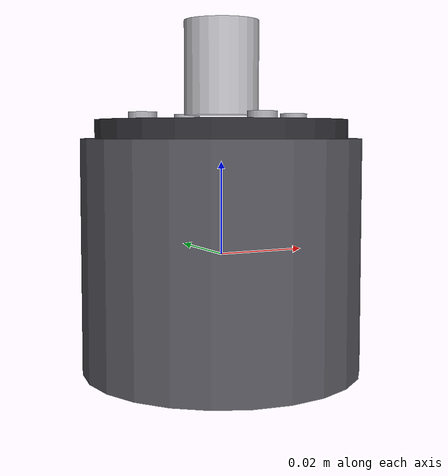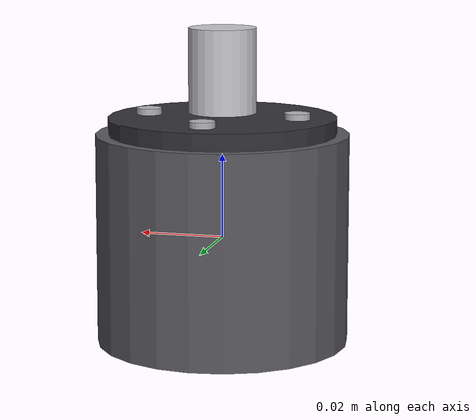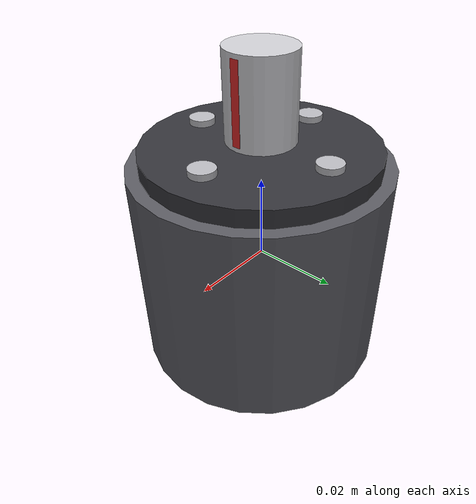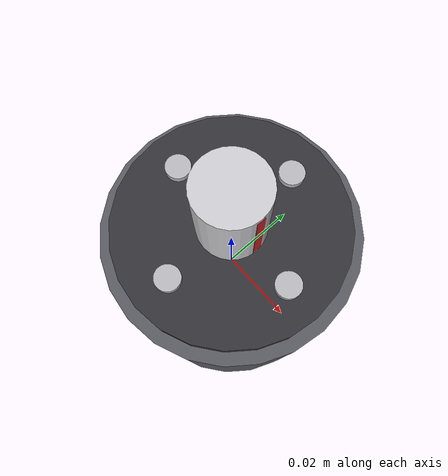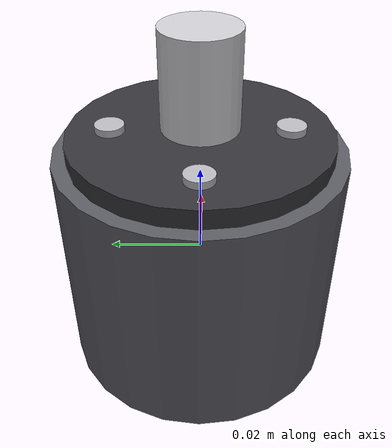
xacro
<?xml version="1.0"?>
<robot xmlns:xacro="http://www.ros.org/wiki/xacro" name="dji_m3508_single_robot">
  <xacro:arg name="use_fake_hardware" default="true"/>
  <xacro:arg name="use_gazebo" default="false"/>

  <!-- 电机定子外壳（固定部分） -->
  <link name="base_link">
    <visual>
      <origin xyz="0 0 0" rpy="0 0 0"/>
      <geometry>
        <cylinder radius="0.03" length="0.05"/>
      </geometry>
      <material name="motor_shell_gray">
        <color rgba="0.35 0.35 0.38 1.0"/>
      </material>
    </visual>
    <visual>
      <origin xyz="0 0 0.027" rpy="0 0 0"/>
      <geometry>
        <cylinder radius="0.027" length="0.004"/>
      </geometry>
      <material name="end_cap_dark">
        <color rgba="0.20 0.20 0.22 1.0"/>
      </material>
    </visual>
    <!-- 安装法兰孔位示意 -->
    <visual>
      <origin xyz="0.018 0.0 0.029" rpy="0 0 0"/>
      <geometry>
        <cylinder radius="0.003" length="0.003"/>
      </geometry>
      <material name="flange_metal">
        <color rgba="0.72 0.72 0.74 1.0"/>
      </material>
    </visual>
    <visual>
      <origin xyz="-0.018 0.0 0.029" rpy="0 0 0"/>
      <geometry>
        <cylinder radius="0.003" length="0.003"/>
      </geometry>
      <material name="flange_metal"/>
    </visual>
    <visual>
      <origin xyz="0.0 0.018 0.029" rpy="0 0 0"/>
      <geometry>
        <cylinder radius="0.003" length="0.003"/>
      </geometry>
      <material name="flange_metal"/>
    </visual>
    <visual>
      <origin xyz="0.0 -0.018 0.029" rpy="0 0 0"/>
      <geometry>
        <cylinder radius="0.003" length="0.003"/>
      </geometry>
      <material name="flange_metal"/>
    </visual>
    <collision>
      <origin xyz="0 0 0" rpy="0 0 0"/>
      <geometry>
        <cylinder radius="0.03" length="0.05"/>
      </geometry>
    </collision>
    <collision>
      <origin xyz="0 0 0.027" rpy="0 0 0"/>
      <geometry>
        <cylinder radius="0.027" length="0.004"/>
      </geometry>
    </collision>
    <inertial>
      <origin xyz="0 0 0" rpy="0 0 0"/>
      <mass value="0.25"/>
      <inertia ixx="0.00008" ixy="0.0" ixz="0.0" iyy="0.00008" iyz="0.0" izz="0.00011"/>
    </inertial>
  </link>

  <!-- 电机输出轴（旋转部分） -->
  <link name="joint1_link">
    <visual>
      <origin xyz="0 0 0.04" rpy="0 0 0"/>
      <geometry>
        <cylinder radius="0.008" length="0.02"/>
      </geometry>
      <material name="shaft_silver">
        <color rgba="0.80 0.80 0.82 1.0"/>
      </material>
    </visual>
    <!-- 旋转标记：便于在 Gazebo 里观察旋转方向和速度 -->
    <visual>
      <origin xyz="0.006 0.0 0.04" rpy="0 0 0"/>
      <geometry>
        <box size="0.004 0.002 0.018"/>
      </geometry>
      <material name="rotor_marker_red">
        <color rgba="0.85 0.15 0.15 1.0"/>
      </material>
    </visual>
    <collision>
      <origin xyz="0 0 0.04" rpy="0 0 0"/>
      <geometry>
        <cylinder radius="0.008" length="0.02"/>
      </geometry>
    </collision>
    <inertial>
      <origin xyz="0 0 0.04" rpy="0 0 0"/>
      <mass value="0.03"/>
      <inertia ixx="0.000003" ixy="0.0" ixz="0.0" iyy="0.000003" iyz="0.0" izz="0.000001"/>
    </inertial>
  </link>

  <joint name="joint1" type="continuous">
    <parent link="base_link"/>
    <child link="joint1_link"/>
    <origin xyz="0 0 0" rpy="0 0 0"/>
    <axis xyz="0 0 1"/>
  </joint>

  <ros2_control name="M3508System" type="system">
    <hardware>
      <!-- Gazebo 模式：控制接口直接接入 Gazebo 物理引擎 -->
      <xacro:if value="$(arg use_gazebo)">
        <plugin>gazebo_ros2_control/GazeboSystem</plugin>
      </xacro:if>
      <xacro:unless value="$(arg use_gazebo)">
        <!-- 非 Gazebo 仿真模式：使用 ros2_control 内置 mock 硬件 -->
        <xacro:if value="$(arg use_fake_hardware)">
          <plugin>mock_components/GenericSystem</plugin>
        </xacro:if>
        <!-- 实物模式：切换到自定义 DJI CAN 硬件插件 -->
        <xacro:unless value="$(arg use_fake_hardware)">
          <plugin>dji_m3508_ros2/DjiM3508Hardware</plugin>
          <param name="can_interface">can0</param>
          <param name="motor_id">1</param>
          <param name="kp">80.0</param>
          <param name="ki">0.0</param>
          <param name="kd">0.0</param>
          <param name="min_effective_current">350</param>
          <param name="max_current">16384</param>
          <param name="error_deadband">1.0</param>
          <param name="startup_error_threshold">8.0</param>
          <param name="current_slew_rate_per_sec">4000.0</param>
          <param name="velocity_lpf_alpha">0.2</param>
        </xacro:unless>
      </xacro:unless>
    </hardware>

    <joint name="joint1">
      <!-- 速度控制输入（rad/s） -->
      <command_interface name="velocity"/>
      <!-- 电机状态输出：位置与速度 -->
      <state_interface name="position"/>
      <state_interface name="velocity"/>
    </joint>
  </ros2_control>

  <gazebo>
    <plugin filename="libgazebo_ros2_control.so" name="gazebo_ros2_control">
      <parameters>$(find dji_m3508_single)/config/controllers.yaml</parameters>
    </plugin>
  </gazebo>
</robot>
